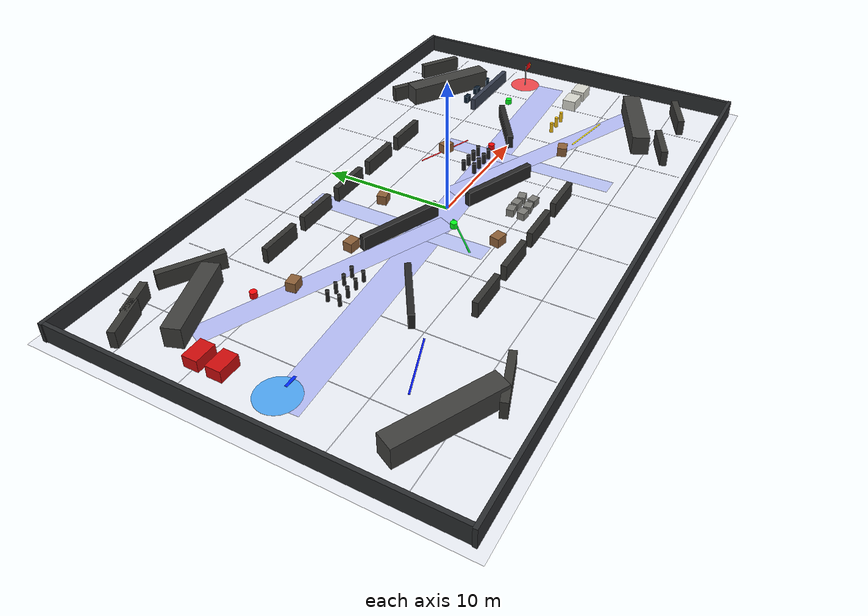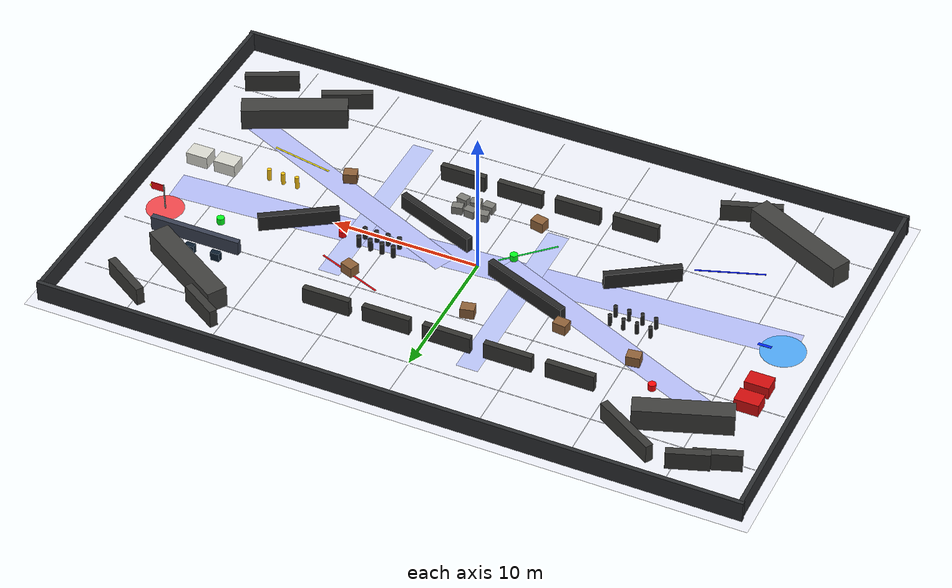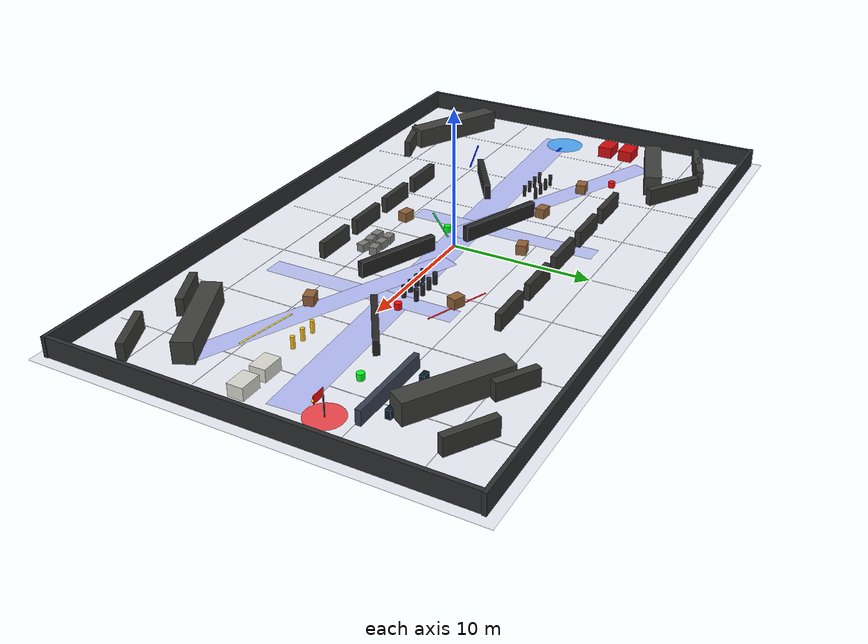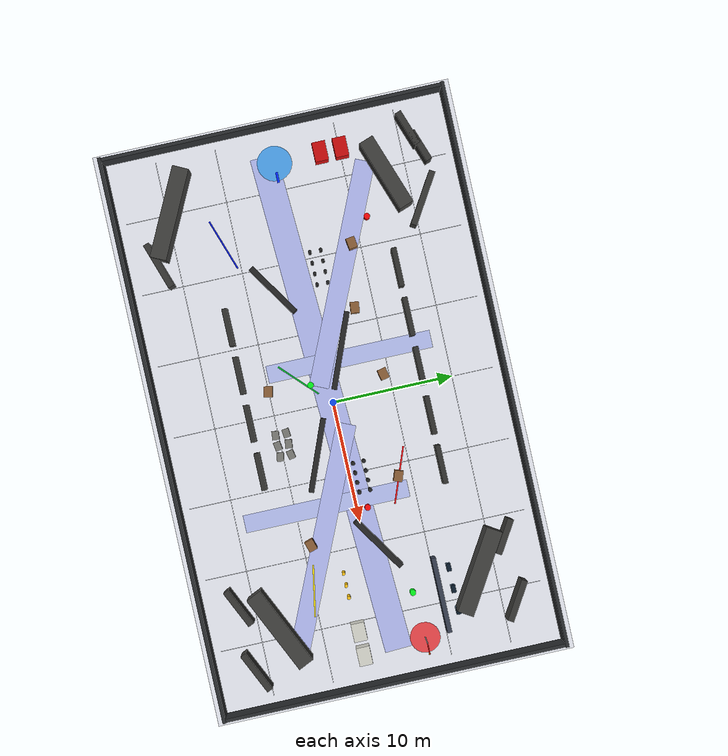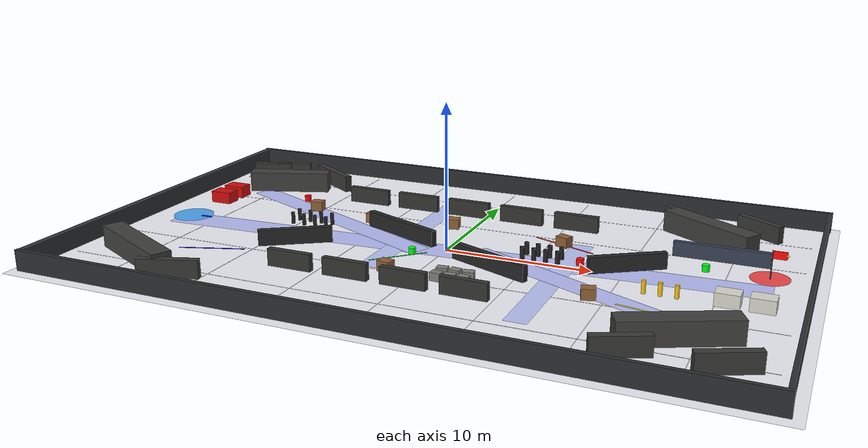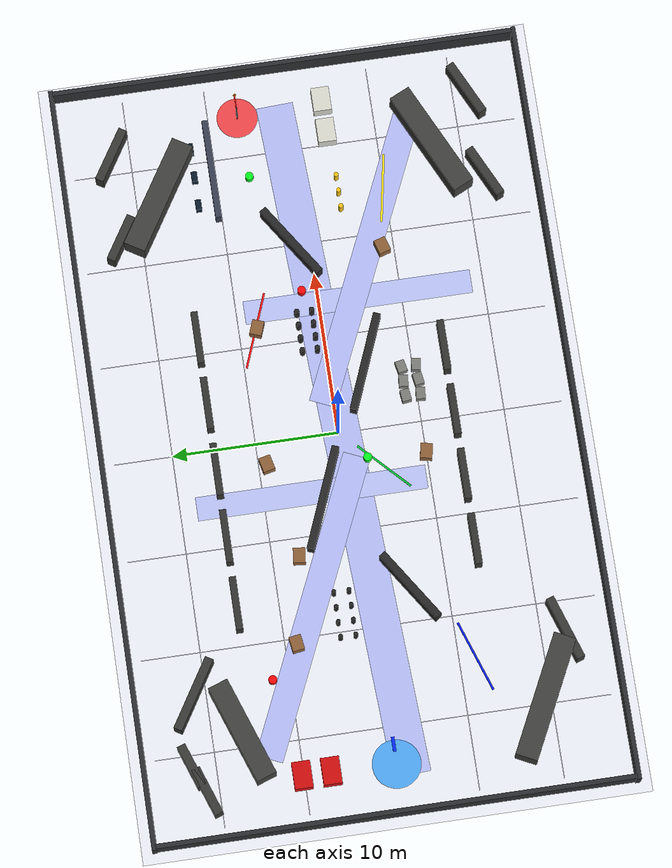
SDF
<?xml version="1.0" ?>
<sdf version="1.6">
  <world name="rvt_cluttered_world">
    <plugin filename="gz-sim-physics-system" name="gz::sim::systems::Physics"/>
    <plugin filename="gz-sim-user-commands-system" name="gz::sim::systems::UserCommands"/>
    <plugin filename="gz-sim-scene-broadcaster-system" name="gz::sim::systems::SceneBroadcaster"/>
    <plugin filename="gz-sim-sensors-system" name="gz::sim::systems::Sensors">
      <render_engine>ogre2</render_engine>
    </plugin>
    <plugin filename="gz-sim-imu-system" name="gz::sim::systems::Imu"/>

    <gravity>0 0 -9.8</gravity>
    <scene>
      <ambient>0.82 0.82 0.86 1.0</ambient>
      <background>0.03 0.035 0.04 1.0</background>
      <shadows>false</shadows>
    </scene>
    <gui fullscreen="0">
      <camera name="stage_scale_overview">
        <pose>0 -1.2 31.0 0 1.22 1.5708</pose>
      </camera>
    </gui>

    <light name="sun" type="directional">
      <cast_shadows>false</cast_shadows>
      <pose>0 0 18 0 0 0</pose>
      <diffuse>0.95 0.95 0.95 1</diffuse>
      <specular>0.18 0.18 0.18 1</specular>
      <attenuation>
        <range>1000</range>
        <constant>0.9</constant>
        <linear>0.01</linear>
        <quadratic>0.001</quadratic>
      </attenuation>
      <direction>-0.35 0.20 -0.92</direction>
    </light>
    <light name="central_softbox" type="point">
      <pose>0 0 13 0 0 0</pose>
      <diffuse>0.72 0.78 1.0 1</diffuse>
      <specular>0.10 0.10 0.12 1</specular>
      <attenuation>
        <range>40</range>
        <constant>0.85</constant>
        <linear>0.02</linear>
        <quadratic>0.002</quadratic>
      </attenuation>
    </light>

    <physics type="ode">
      <max_step_size>0.003</max_step_size>
      <real_time_factor>1.0</real_time_factor>
    </physics>

    <model name="stage_floor">
      <static>true</static>
      <link name="link">
        <collision name="collision">
          <geometry>
            <plane>
              <normal>0 0 1</normal>
              <size>48 30</size>
            </plane>
          </geometry>
        </collision>
        <visual name="visual">
          <geometry>
            <plane>
              <normal>0 0 1</normal>
              <size>48 30</size>
            </plane>
          </geometry>
          <material>
            <ambient>0.88 0.90 0.94 1</ambient>
            <diffuse>0.94 0.95 0.98 1</diffuse>
          </material>
        </visual>
      </link>
    </model>

    <model name="floor_grid_and_routes">
      <static>true</static>
      <link name="main_lane"><pose>0 -0.2 0.012 0 0 0.05</pose><visual name="visual"><geometry><box><size>42.0 2.25 0.012</size></box></geometry><transparency>0.46</transparency><material><ambient>0.35 0.42 1.00 0.35</ambient><diffuse>0.35 0.42 1.00 0.35</diffuse></material></visual></link>
      <link name="diag_lane_left"><pose>-10.2 3.0 0.014 0 0 -0.42</pose><visual name="visual"><geometry><box><size>19.0 1.65 0.012</size></box></geometry><transparency>0.55</transparency><material><ambient>0.25 0.32 1.00 0.30</ambient><diffuse>0.25 0.32 1.00 0.30</diffuse></material></visual></link>
      <link name="diag_lane_right"><pose>10.6 -3.2 0.014 0 0 -0.42</pose><visual name="visual"><geometry><box><size>19.0 1.65 0.012</size></box></geometry><transparency>0.55</transparency><material><ambient>0.25 0.32 1.00 0.30</ambient><diffuse>0.25 0.32 1.00 0.30</diffuse></material></visual></link>
      <link name="cross_lane_a"><pose>-3.4 2.1 0.013 0 0 1.5708</pose><visual name="visual"><geometry><box><size>13.8 1.45 0.012</size></box></geometry><transparency>0.58</transparency><material><ambient>0.20 0.32 1.00 0.26</ambient><diffuse>0.20 0.32 1.00 0.26</diffuse></material></visual></link>
      <link name="cross_lane_b"><pose>8.2 -2.4 0.013 0 0 1.5708</pose><visual name="visual"><geometry><box><size>13.8 1.45 0.012</size></box></geometry><transparency>0.58</transparency><material><ambient>0.20 0.32 1.00 0.26</ambient><diffuse>0.20 0.32 1.00 0.26</diffuse></material></visual></link>
      <link name="blue_route_0"><pose>-14.6 -6.0 0.025 0 0 0.33</pose><visual name="visual"><geometry><box><size>4.5 0.12 0.014</size></box></geometry><material><ambient>0.02 0.10 0.95 1</ambient><diffuse>0.02 0.10 0.95 1</diffuse><emissive>0 0.02 0.30 1</emissive></material></visual></link>
      <link name="green_route_0"><pose>-2.4 -2.4 0.025 0 0 0.77</pose><visual name="visual"><geometry><box><size>4.0 0.12 0.014</size></box></geometry><material><ambient>0.00 0.78 0.16 1</ambient><diffuse>0.00 0.82 0.20 1</diffuse><emissive>0 0.16 0.02 1</emissive></material></visual></link>
      <link name="red_route_0"><pose>7.0 4.0 0.025 0 0 -0.36</pose><visual name="visual"><geometry><box><size>4.8 0.12 0.014</size></box></geometry><material><ambient>0.92 0.05 0.07 1</ambient><diffuse>0.96 0.06 0.08 1</diffuse><emissive>0.22 0 0 1</emissive></material></visual></link>
      <link name="yellow_route_0"><pose>14.8 -4.9 0.025 0 0 -0.18</pose><visual name="visual"><geometry><box><size>4.3 0.12 0.014</size></box></geometry><material><ambient>1.00 0.90 0.05 1</ambient><diffuse>1.00 0.92 0.08 1</diffuse><emissive>0.22 0.20 0 1</emissive></material></visual></link>
      <link name="grid_x_0"><pose>-18 0 0.009 0 0 0</pose><visual name="visual"><geometry><box><size>0.035 27.0 0.01</size></box></geometry><transparency>0.72</transparency><material><ambient>0.65 0.68 0.78 0.20</ambient><diffuse>0.65 0.68 0.78 0.20</diffuse></material></visual></link>
      <link name="grid_x_1"><pose>-12 0 0.009 0 0 0</pose><visual name="visual"><geometry><box><size>0.035 27.0 0.01</size></box></geometry><transparency>0.72</transparency><material><ambient>0.65 0.68 0.78 0.20</ambient><diffuse>0.65 0.68 0.78 0.20</diffuse></material></visual></link>
      <link name="grid_x_2"><pose>-6 0 0.009 0 0 0</pose><visual name="visual"><geometry><box><size>0.035 27.0 0.01</size></box></geometry><transparency>0.72</transparency><material><ambient>0.65 0.68 0.78 0.20</ambient><diffuse>0.65 0.68 0.78 0.20</diffuse></material></visual></link>
      <link name="grid_x_3"><pose>0 0 0.009 0 0 0</pose><visual name="visual"><geometry><box><size>0.035 27.0 0.01</size></box></geometry><transparency>0.72</transparency><material><ambient>0.65 0.68 0.78 0.20</ambient><diffuse>0.65 0.68 0.78 0.20</diffuse></material></visual></link>
      <link name="grid_x_4"><pose>6 0 0.009 0 0 0</pose><visual name="visual"><geometry><box><size>0.035 27.0 0.01</size></box></geometry><transparency>0.72</transparency><material><ambient>0.65 0.68 0.78 0.20</ambient><diffuse>0.65 0.68 0.78 0.20</diffuse></material></visual></link>
      <link name="grid_x_5"><pose>12 0 0.009 0 0 0</pose><visual name="visual"><geometry><box><size>0.035 27.0 0.01</size></box></geometry><transparency>0.72</transparency><material><ambient>0.65 0.68 0.78 0.20</ambient><diffuse>0.65 0.68 0.78 0.20</diffuse></material></visual></link>
      <link name="grid_x_6"><pose>18 0 0.009 0 0 0</pose><visual name="visual"><geometry><box><size>0.035 27.0 0.01</size></box></geometry><transparency>0.72</transparency><material><ambient>0.65 0.68 0.78 0.20</ambient><diffuse>0.65 0.68 0.78 0.20</diffuse></material></visual></link>
      <link name="grid_y_0"><pose>0 -10 0.009 0 0 0</pose><visual name="visual"><geometry><box><size>45.0 0.035 0.01</size></box></geometry><transparency>0.72</transparency><material><ambient>0.65 0.68 0.78 0.20</ambient><diffuse>0.65 0.68 0.78 0.20</diffuse></material></visual></link>
      <link name="grid_y_1"><pose>0 -5 0.009 0 0 0</pose><visual name="visual"><geometry><box><size>45.0 0.035 0.01</size></box></geometry><transparency>0.72</transparency><material><ambient>0.65 0.68 0.78 0.20</ambient><diffuse>0.65 0.68 0.78 0.20</diffuse></material></visual></link>
      <link name="grid_y_2"><pose>0 5 0.009 0 0 0</pose><visual name="visual"><geometry><box><size>45.0 0.035 0.01</size></box></geometry><transparency>0.72</transparency><material><ambient>0.65 0.68 0.78 0.20</ambient><diffuse>0.65 0.68 0.78 0.20</diffuse></material></visual></link>
      <link name="grid_y_3"><pose>0 10 0.009 0 0 0</pose><visual name="visual"><geometry><box><size>45.0 0.035 0.01</size></box></geometry><transparency>0.72</transparency><material><ambient>0.65 0.68 0.78 0.20</ambient><diffuse>0.65 0.68 0.78 0.20</diffuse></material></visual></link>
    </model>

    <model name="stage_scale_walls">
      <static>true</static>
      <link name="north_wall"><pose>0 14.2 0.70 0 0 0</pose><collision name="collision"><geometry><box><size>46.8 0.28 1.40</size></box></geometry></collision><visual name="visual"><geometry><box><size>46.8 0.28 1.40</size></box></geometry><material><ambient>0.10 0.11 0.12 1</ambient><diffuse>0.17 0.18 0.19 1</diffuse></material></visual></link>
      <link name="south_wall"><pose>0 -14.2 0.70 0 0 0</pose><collision name="collision"><geometry><box><size>46.8 0.28 1.40</size></box></geometry></collision><visual name="visual"><geometry><box><size>46.8 0.28 1.40</size></box></geometry><material><ambient>0.10 0.11 0.12 1</ambient><diffuse>0.17 0.18 0.19 1</diffuse></material></visual></link>
      <link name="west_wall"><pose>-23.2 0 0.70 0 0 0</pose><collision name="collision"><geometry><box><size>0.28 28.2 1.40</size></box></geometry></collision><visual name="visual"><geometry><box><size>0.28 28.2 1.40</size></box></geometry><material><ambient>0.10 0.11 0.12 1</ambient><diffuse>0.17 0.18 0.19 1</diffuse></material></visual></link>
      <link name="east_wall"><pose>23.2 0 0.70 0 0 0</pose><collision name="collision"><geometry><box><size>0.28 28.2 1.40</size></box></geometry></collision><visual name="visual"><geometry><box><size>0.28 28.2 1.40</size></box></geometry><material><ambient>0.10 0.11 0.12 1</ambient><diffuse>0.17 0.18 0.19 1</diffuse></material></visual></link>
    </model>

    <model name="warehouse_obstacle_field">
      <static>true</static>
      <link name="nw_building_core"><pose>-17.2 8.2 0.75 0 0 0.34</pose><collision name="collision"><geometry><box><size>6.2 1.25 1.50</size></box></geometry></collision><visual name="visual"><geometry><box><size>6.2 1.25 1.50</size></box></geometry><material><ambient>0.18 0.18 0.17 1</ambient><diffuse>0.25 0.25 0.24 1</diffuse></material></visual></link>
      <link name="nw_building_finger_a"><pose>-20.4 10.7 0.62 0 0 0.34</pose><collision name="collision"><geometry><box><size>3.0 0.52 1.24</size></box></geometry></collision><visual name="visual"><geometry><box><size>3.0 0.52 1.24</size></box></geometry><material><ambient>0.14 0.14 0.14 1</ambient><diffuse>0.22 0.22 0.21 1</diffuse></material></visual></link>
      <link name="nw_building_finger_b"><pose>-18.8 11.4 0.62 0 0 0.34</pose><collision name="collision"><geometry><box><size>2.7 0.52 1.24</size></box></geometry></collision><visual name="visual"><geometry><box><size>2.7 0.52 1.24</size></box></geometry><material><ambient>0.14 0.14 0.14 1</ambient><diffuse>0.22 0.22 0.21 1</diffuse></material></visual></link>
      <link name="nw_building_tail"><pose>-14.6 10.7 0.62 0 0 -0.55</pose><collision name="collision"><geometry><box><size>4.6 0.52 1.24</size></box></geometry></collision><visual name="visual"><geometry><box><size>4.6 0.52 1.24</size></box></geometry><material><ambient>0.14 0.14 0.14 1</ambient><diffuse>0.22 0.22 0.21 1</diffuse></material></visual></link>
      <link name="ne_building_core"><pose>15.9 8.6 0.75 0 0 -0.55</pose><collision name="collision"><geometry><box><size>7.2 1.35 1.50</size></box></geometry></collision><visual name="visual"><geometry><box><size>7.2 1.35 1.50</size></box></geometry><material><ambient>0.18 0.18 0.17 1</ambient><diffuse>0.25 0.25 0.24 1</diffuse></material></visual></link>
      <link name="ne_building_finger_a"><pose>18.9 11.1 0.62 0 0 -0.55</pose><collision name="collision"><geometry><box><size>3.5 0.52 1.24</size></box></geometry></collision><visual name="visual"><geometry><box><size>3.5 0.52 1.24</size></box></geometry><material><ambient>0.14 0.14 0.14 1</ambient><diffuse>0.22 0.22 0.21 1</diffuse></material></visual></link>
      <link name="ne_building_finger_b"><pose>13.6 11.2 0.62 0 0 -0.55</pose><collision name="collision"><geometry><box><size>3.0 0.52 1.24</size></box></geometry></collision><visual name="visual"><geometry><box><size>3.0 0.52 1.24</size></box></geometry><material><ambient>0.14 0.14 0.14 1</ambient><diffuse>0.22 0.22 0.21 1</diffuse></material></visual></link>
      <link name="sw_building_core"><pose>-17.8 -9.6 0.75 0 0 -0.46</pose><collision name="collision"><geometry><box><size>7.6 1.35 1.50</size></box></geometry></collision><visual name="visual"><geometry><box><size>7.6 1.35 1.50</size></box></geometry><material><ambient>0.18 0.18 0.17 1</ambient><diffuse>0.25 0.25 0.24 1</diffuse></material></visual></link>
      <link name="sw_building_tail"><pose>-13.9 -11.4 0.62 0 0 0.32</pose><collision name="collision"><geometry><box><size>4.0 0.50 1.24</size></box></geometry></collision><visual name="visual"><geometry><box><size>4.0 0.50 1.24</size></box></geometry><material><ambient>0.14 0.14 0.14 1</ambient><diffuse>0.22 0.22 0.21 1</diffuse></material></visual></link>
      <link name="se_building_core"><pose>17.0 -8.2 0.75 0 0 0.44</pose><collision name="collision"><geometry><box><size>7.0 1.35 1.50</size></box></geometry></collision><visual name="visual"><geometry><box><size>7.0 1.35 1.50</size></box></geometry><material><ambient>0.18 0.18 0.17 1</ambient><diffuse>0.25 0.25 0.24 1</diffuse></material></visual></link>
      <link name="se_building_finger_a"><pose>20.0 -10.8 0.62 0 0 0.44</pose><collision name="collision"><geometry><box><size>3.6 0.52 1.24</size></box></geometry></collision><visual name="visual"><geometry><box><size>3.6 0.52 1.24</size></box></geometry><material><ambient>0.14 0.14 0.14 1</ambient><diffuse>0.22 0.22 0.21 1</diffuse></material></visual></link>
      <link name="se_building_finger_b"><pose>14.6 -11.1 0.62 0 0 0.44</pose><collision name="collision"><geometry><box><size>3.4 0.52 1.24</size></box></geometry></collision><visual name="visual"><geometry><box><size>3.4 0.52 1.24</size></box></geometry><material><ambient>0.14 0.14 0.14 1</ambient><diffuse>0.22 0.22 0.21 1</diffuse></material></visual></link>

      <link name="central_barrier_a"><pose>-4.0 1.5 0.55 0 0 -0.38</pose><collision name="collision"><geometry><box><size>6.4 0.45 1.10</size></box></geometry></collision><visual name="visual"><geometry><box><size>6.4 0.45 1.10</size></box></geometry><material><ambient>0.09 0.09 0.09 1</ambient><diffuse>0.15 0.15 0.15 1</diffuse></material></visual></link>
      <link name="central_barrier_b"><pose>3.9 -2.2 0.55 0 0 -0.38</pose><collision name="collision"><geometry><box><size>6.1 0.45 1.10</size></box></geometry></collision><visual name="visual"><geometry><box><size>6.1 0.45 1.10</size></box></geometry><material><ambient>0.09 0.09 0.09 1</ambient><diffuse>0.15 0.15 0.15 1</diffuse></material></visual></link>
      <link name="central_barrier_c"><pose>12.0 1.1 0.55 0 0 0.58</pose><collision name="collision"><geometry><box><size>5.2 0.45 1.10</size></box></geometry></collision><visual name="visual"><geometry><box><size>5.2 0.45 1.10</size></box></geometry><material><ambient>0.09 0.09 0.09 1</ambient><diffuse>0.15 0.15 0.15 1</diffuse></material></visual></link>
      <link name="central_barrier_d"><pose>-10.0 -2.8 0.55 0 0 0.58</pose><collision name="collision"><geometry><box><size>5.0 0.45 1.10</size></box></geometry></collision><visual name="visual"><geometry><box><size>5.0 0.45 1.10</size></box></geometry><material><ambient>0.09 0.09 0.09 1</ambient><diffuse>0.15 0.15 0.15 1</diffuse></material></visual></link>

      <link name="rack_north_0"><pose>-9.6 7.5 0.58 0 0 0</pose><collision name="collision"><geometry><box><size>3.2 0.42 1.16</size></box></geometry></collision><visual name="visual"><geometry><box><size>3.2 0.42 1.16</size></box></geometry><material><ambient>0.12 0.12 0.12 1</ambient><diffuse>0.20 0.20 0.19 1</diffuse></material></visual></link>
      <link name="rack_north_1"><pose>-5.5 7.5 0.58 0 0 0</pose><collision name="collision"><geometry><box><size>3.2 0.42 1.16</size></box></geometry></collision><visual name="visual"><geometry><box><size>3.2 0.42 1.16</size></box></geometry><material><ambient>0.12 0.12 0.12 1</ambient><diffuse>0.20 0.20 0.19 1</diffuse></material></visual></link>
      <link name="rack_north_2"><pose>-1.4 7.5 0.58 0 0 0</pose><collision name="collision"><geometry><box><size>3.2 0.42 1.16</size></box></geometry></collision><visual name="visual"><geometry><box><size>3.2 0.42 1.16</size></box></geometry><material><ambient>0.12 0.12 0.12 1</ambient><diffuse>0.20 0.20 0.19 1</diffuse></material></visual></link>
      <link name="rack_north_3"><pose>2.7 7.5 0.58 0 0 0</pose><collision name="collision"><geometry><box><size>3.2 0.42 1.16</size></box></geometry></collision><visual name="visual"><geometry><box><size>3.2 0.42 1.16</size></box></geometry><material><ambient>0.12 0.12 0.12 1</ambient><diffuse>0.20 0.20 0.19 1</diffuse></material></visual></link>
      <link name="rack_north_4"><pose>6.8 7.5 0.58 0 0 0</pose><collision name="collision"><geometry><box><size>3.2 0.42 1.16</size></box></geometry></collision><visual name="visual"><geometry><box><size>3.2 0.42 1.16</size></box></geometry><material><ambient>0.12 0.12 0.12 1</ambient><diffuse>0.20 0.20 0.19 1</diffuse></material></visual></link>
      <link name="rack_south_0"><pose>-7.8 -7.0 0.58 0 0 0</pose><collision name="collision"><geometry><box><size>3.1 0.42 1.16</size></box></geometry></collision><visual name="visual"><geometry><box><size>3.1 0.42 1.16</size></box></geometry><material><ambient>0.12 0.12 0.12 1</ambient><diffuse>0.20 0.20 0.19 1</diffuse></material></visual></link>
      <link name="rack_south_1"><pose>-3.8 -7.0 0.58 0 0 0</pose><collision name="collision"><geometry><box><size>3.1 0.42 1.16</size></box></geometry></collision><visual name="visual"><geometry><box><size>3.1 0.42 1.16</size></box></geometry><material><ambient>0.12 0.12 0.12 1</ambient><diffuse>0.20 0.20 0.19 1</diffuse></material></visual></link>
      <link name="rack_south_2"><pose>0.2 -7.0 0.58 0 0 0</pose><collision name="collision"><geometry><box><size>3.1 0.42 1.16</size></box></geometry></collision><visual name="visual"><geometry><box><size>3.1 0.42 1.16</size></box></geometry><material><ambient>0.12 0.12 0.12 1</ambient><diffuse>0.20 0.20 0.19 1</diffuse></material></visual></link>
      <link name="rack_south_3"><pose>4.2 -7.0 0.58 0 0 0</pose><collision name="collision"><geometry><box><size>3.1 0.42 1.16</size></box></geometry></collision><visual name="visual"><geometry><box><size>3.1 0.42 1.16</size></box></geometry><material><ambient>0.12 0.12 0.12 1</ambient><diffuse>0.20 0.20 0.19 1</diffuse></material></visual></link>

      <link name="loading_station_a"><pose>18.7 -2.0 0.43 0 0 0</pose><collision name="collision"><geometry><box><size>1.5 1.1 0.86</size></box></geometry></collision><visual name="visual"><geometry><box><size>1.5 1.1 0.86</size></box></geometry><material><ambient>0.65 0.65 0.62 1</ambient><diffuse>0.86 0.86 0.82 1</diffuse></material></visual></link>
      <link name="loading_station_b"><pose>20.7 -2.0 0.43 0 0 0</pose><collision name="collision"><geometry><box><size>1.5 1.1 0.86</size></box></geometry></collision><visual name="visual"><geometry><box><size>1.5 1.1 0.86</size></box></geometry><material><ambient>0.65 0.65 0.62 1</ambient><diffuse>0.86 0.86 0.82 1</diffuse></material></visual></link>
      <link name="unloading_station_a"><pose>-20.2 3.4 0.43 0 0 0</pose><collision name="collision"><geometry><box><size>1.6 1.1 0.86</size></box></geometry></collision><visual name="visual"><geometry><box><size>1.6 1.1 0.86</size></box></geometry><material><ambient>0.55 0.03 0.03 1</ambient><diffuse>0.82 0.05 0.05 1</diffuse></material></visual></link>
      <link name="unloading_station_b"><pose>-20.2 5.1 0.43 0 0 0</pose><collision name="collision"><geometry><box><size>1.6 1.1 0.86</size></box></geometry></collision><visual name="visual"><geometry><box><size>1.6 1.1 0.86</size></box></geometry><material><ambient>0.55 0.03 0.03 1</ambient><diffuse>0.82 0.05 0.05 1</diffuse></material></visual></link>
      <link name="charging_barrier"><pose>17.2 5.2 0.50 0 0 0</pose><collision name="collision"><geometry><box><size>6.2 0.38 1.00</size></box></geometry></collision><visual name="visual"><geometry><box><size>6.2 0.38 1.00</size></box></geometry><material><ambient>0.14 0.16 0.20 1</ambient><diffuse>0.22 0.25 0.32 1</diffuse></material></visual></link>
      <link name="charger_box_0"><pose>15.2 6.3 0.30 0 0 0</pose><collision name="collision"><geometry><box><size>0.62 0.36 0.60</size></box></geometry></collision><visual name="visual"><geometry><box><size>0.62 0.36 0.60</size></box></geometry><material><ambient>0.02 0.05 0.08 1</ambient><diffuse>0.04 0.11 0.18 1</diffuse><emissive>0 0.08 0.18 1</emissive></material></visual></link>
      <link name="charger_box_1"><pose>17.0 6.3 0.30 0 0 0</pose><collision name="collision"><geometry><box><size>0.62 0.36 0.60</size></box></geometry></collision><visual name="visual"><geometry><box><size>0.62 0.36 0.60</size></box></geometry><material><ambient>0.02 0.05 0.08 1</ambient><diffuse>0.04 0.11 0.18 1</diffuse><emissive>0 0.08 0.18 1</emissive></material></visual></link>
      <link name="charger_box_2"><pose>18.8 6.3 0.30 0 0 0</pose><collision name="collision"><geometry><box><size>0.62 0.36 0.60</size></box></geometry></collision><visual name="visual"><geometry><box><size>0.62 0.36 0.60</size></box></geometry><material><ambient>0.02 0.05 0.08 1</ambient><diffuse>0.04 0.11 0.18 1</diffuse><emissive>0 0.08 0.18 1</emissive></material></visual></link>

      <link name="crate_0"><pose>-12.4 4.3 0.36 0 0 0.15</pose><collision name="collision"><geometry><box><size>0.9 0.72 0.72</size></box></geometry></collision><visual name="visual"><geometry><box><size>0.9 0.72 0.72</size></box></geometry><material><ambient>0.36 0.25 0.15 1</ambient><diffuse>0.56 0.38 0.22 1</diffuse></material></visual></link>
      <link name="crate_1"><pose>-7.2 3.4 0.36 0 0 -0.1</pose><collision name="collision"><geometry><box><size>0.9 0.72 0.72</size></box></geometry></collision><visual name="visual"><geometry><box><size>0.9 0.72 0.72</size></box></geometry><material><ambient>0.36 0.25 0.15 1</ambient><diffuse>0.56 0.38 0.22 1</diffuse></material></visual></link>
      <link name="crate_2"><pose>-1.4 4.5 0.36 0 0 0.22</pose><collision name="collision"><geometry><box><size>0.9 0.72 0.72</size></box></geometry></collision><visual name="visual"><geometry><box><size>0.9 0.72 0.72</size></box></geometry><material><ambient>0.36 0.25 0.15 1</ambient><diffuse>0.56 0.38 0.22 1</diffuse></material></visual></link>
      <link name="crate_3"><pose>7.0 3.9 0.36 0 0 -0.35</pose><collision name="collision"><geometry><box><size>0.9 0.72 0.72</size></box></geometry></collision><visual name="visual"><geometry><box><size>0.9 0.72 0.72</size></box></geometry><material><ambient>0.36 0.25 0.15 1</ambient><diffuse>0.56 0.38 0.22 1</diffuse></material></visual></link>
      <link name="crate_4"><pose>11.0 -4.3 0.36 0 0 0.3</pose><collision name="collision"><geometry><box><size>0.9 0.72 0.72</size></box></geometry></collision><visual name="visual"><geometry><box><size>0.9 0.72 0.72</size></box></geometry><material><ambient>0.36 0.25 0.15 1</ambient><diffuse>0.56 0.38 0.22 1</diffuse></material></visual></link>
      <link name="crate_5"><pose>-2.0 -5.0 0.36 0 0 -0.2</pose><collision name="collision"><geometry><box><size>0.9 0.72 0.72</size></box></geometry></collision><visual name="visual"><geometry><box><size>0.9 0.72 0.72</size></box></geometry><material><ambient>0.36 0.25 0.15 1</ambient><diffuse>0.56 0.38 0.22 1</diffuse></material></visual></link>
    </model>

    <model name="dense_post_and_pallet_fields">
      <static>true</static>
      <link name="post_a_0"><pose>-12.4 0.8 0.42 0 0 0</pose><collision name="collision"><geometry><cylinder><radius>0.13</radius><length>0.84</length></cylinder></geometry></collision><visual name="visual"><geometry><cylinder><radius>0.13</radius><length>0.84</length></cylinder></geometry><material><ambient>0.08 0.08 0.08 1</ambient><diffuse>0.14 0.14 0.14 1</diffuse></material></visual></link>
      <link name="post_a_1"><pose>-11.5 0.8 0.42 0 0 0</pose><collision name="collision"><geometry><cylinder><radius>0.13</radius><length>0.84</length></cylinder></geometry></collision><visual name="visual"><geometry><cylinder><radius>0.13</radius><length>0.84</length></cylinder></geometry><material><ambient>0.08 0.08 0.08 1</ambient><diffuse>0.14 0.14 0.14 1</diffuse></material></visual></link>
      <link name="post_a_2"><pose>-10.6 0.8 0.42 0 0 0</pose><collision name="collision"><geometry><cylinder><radius>0.13</radius><length>0.84</length></cylinder></geometry></collision><visual name="visual"><geometry><cylinder><radius>0.13</radius><length>0.84</length></cylinder></geometry><material><ambient>0.08 0.08 0.08 1</ambient><diffuse>0.14 0.14 0.14 1</diffuse></material></visual></link>
      <link name="post_a_3"><pose>-9.7 0.8 0.42 0 0 0</pose><collision name="collision"><geometry><cylinder><radius>0.13</radius><length>0.84</length></cylinder></geometry></collision><visual name="visual"><geometry><cylinder><radius>0.13</radius><length>0.84</length></cylinder></geometry><material><ambient>0.08 0.08 0.08 1</ambient><diffuse>0.14 0.14 0.14 1</diffuse></material></visual></link>
      <link name="post_a_4"><pose>-12.4 1.7 0.42 0 0 0</pose><collision name="collision"><geometry><cylinder><radius>0.13</radius><length>0.84</length></cylinder></geometry></collision><visual name="visual"><geometry><cylinder><radius>0.13</radius><length>0.84</length></cylinder></geometry><material><ambient>0.08 0.08 0.08 1</ambient><diffuse>0.14 0.14 0.14 1</diffuse></material></visual></link>
      <link name="post_a_5"><pose>-11.5 1.7 0.42 0 0 0</pose><collision name="collision"><geometry><cylinder><radius>0.13</radius><length>0.84</length></cylinder></geometry></collision><visual name="visual"><geometry><cylinder><radius>0.13</radius><length>0.84</length></cylinder></geometry><material><ambient>0.08 0.08 0.08 1</ambient><diffuse>0.14 0.14 0.14 1</diffuse></material></visual></link>
      <link name="post_a_6"><pose>-10.6 1.7 0.42 0 0 0</pose><collision name="collision"><geometry><cylinder><radius>0.13</radius><length>0.84</length></cylinder></geometry></collision><visual name="visual"><geometry><cylinder><radius>0.13</radius><length>0.84</length></cylinder></geometry><material><ambient>0.08 0.08 0.08 1</ambient><diffuse>0.14 0.14 0.14 1</diffuse></material></visual></link>
      <link name="post_a_7"><pose>-9.7 1.7 0.42 0 0 0</pose><collision name="collision"><geometry><cylinder><radius>0.13</radius><length>0.84</length></cylinder></geometry></collision><visual name="visual"><geometry><cylinder><radius>0.13</radius><length>0.84</length></cylinder></geometry><material><ambient>0.08 0.08 0.08 1</ambient><diffuse>0.14 0.14 0.14 1</diffuse></material></visual></link>
      <link name="post_b_0"><pose>5.2 0.5 0.42 0 0 0</pose><collision name="collision"><geometry><cylinder><radius>0.16</radius><length>0.84</length></cylinder></geometry></collision><visual name="visual"><geometry><cylinder><radius>0.16</radius><length>0.84</length></cylinder></geometry><material><ambient>0.08 0.08 0.08 1</ambient><diffuse>0.14 0.14 0.14 1</diffuse></material></visual></link>
      <link name="post_b_1"><pose>6.0 0.5 0.42 0 0 0</pose><collision name="collision"><geometry><cylinder><radius>0.16</radius><length>0.84</length></cylinder></geometry></collision><visual name="visual"><geometry><cylinder><radius>0.16</radius><length>0.84</length></cylinder></geometry><material><ambient>0.08 0.08 0.08 1</ambient><diffuse>0.14 0.14 0.14 1</diffuse></material></visual></link>
      <link name="post_b_2"><pose>6.8 0.5 0.42 0 0 0</pose><collision name="collision"><geometry><cylinder><radius>0.16</radius><length>0.84</length></cylinder></geometry></collision><visual name="visual"><geometry><cylinder><radius>0.16</radius><length>0.84</length></cylinder></geometry><material><ambient>0.08 0.08 0.08 1</ambient><diffuse>0.14 0.14 0.14 1</diffuse></material></visual></link>
      <link name="post_b_3"><pose>7.6 0.5 0.42 0 0 0</pose><collision name="collision"><geometry><cylinder><radius>0.16</radius><length>0.84</length></cylinder></geometry></collision><visual name="visual"><geometry><cylinder><radius>0.16</radius><length>0.84</length></cylinder></geometry><material><ambient>0.08 0.08 0.08 1</ambient><diffuse>0.14 0.14 0.14 1</diffuse></material></visual></link>
      <link name="post_b_4"><pose>5.2 1.4 0.42 0 0 0</pose><collision name="collision"><geometry><cylinder><radius>0.16</radius><length>0.84</length></cylinder></geometry></collision><visual name="visual"><geometry><cylinder><radius>0.16</radius><length>0.84</length></cylinder></geometry><material><ambient>0.08 0.08 0.08 1</ambient><diffuse>0.14 0.14 0.14 1</diffuse></material></visual></link>
      <link name="post_b_5"><pose>6.0 1.4 0.42 0 0 0</pose><collision name="collision"><geometry><cylinder><radius>0.16</radius><length>0.84</length></cylinder></geometry></collision><visual name="visual"><geometry><cylinder><radius>0.16</radius><length>0.84</length></cylinder></geometry><material><ambient>0.08 0.08 0.08 1</ambient><diffuse>0.14 0.14 0.14 1</diffuse></material></visual></link>
      <link name="post_b_6"><pose>6.8 1.4 0.42 0 0 0</pose><collision name="collision"><geometry><cylinder><radius>0.16</radius><length>0.84</length></cylinder></geometry></collision><visual name="visual"><geometry><cylinder><radius>0.16</radius><length>0.84</length></cylinder></geometry><material><ambient>0.08 0.08 0.08 1</ambient><diffuse>0.14 0.14 0.14 1</diffuse></material></visual></link>
      <link name="post_b_7"><pose>7.6 1.4 0.42 0 0 0</pose><collision name="collision"><geometry><cylinder><radius>0.16</radius><length>0.84</length></cylinder></geometry></collision><visual name="visual"><geometry><cylinder><radius>0.16</radius><length>0.84</length></cylinder></geometry><material><ambient>0.08 0.08 0.08 1</ambient><diffuse>0.14 0.14 0.14 1</diffuse></material></visual></link>
      <link name="pallet_cluster_0"><pose>1.6 -4.3 0.28 0 0 0.12</pose><collision name="collision"><geometry><box><size>0.72 0.56 0.56</size></box></geometry></collision><visual name="visual"><geometry><box><size>0.72 0.56 0.56</size></box></geometry><material><ambient>0.35 0.35 0.34 1</ambient><diffuse>0.49 0.49 0.47 1</diffuse></material></visual></link>
      <link name="pallet_cluster_1"><pose>2.5 -4.3 0.28 0 0 -0.1</pose><collision name="collision"><geometry><box><size>0.72 0.56 0.56</size></box></geometry></collision><visual name="visual"><geometry><box><size>0.72 0.56 0.56</size></box></geometry><material><ambient>0.35 0.35 0.34 1</ambient><diffuse>0.49 0.49 0.47 1</diffuse></material></visual></link>
      <link name="pallet_cluster_2"><pose>3.4 -4.3 0.28 0 0 0.2</pose><collision name="collision"><geometry><box><size>0.72 0.56 0.56</size></box></geometry></collision><visual name="visual"><geometry><box><size>0.72 0.56 0.56</size></box></geometry><material><ambient>0.35 0.35 0.34 1</ambient><diffuse>0.49 0.49 0.47 1</diffuse></material></visual></link>
      <link name="pallet_cluster_3"><pose>1.6 -5.2 0.28 0 0 -0.08</pose><collision name="collision"><geometry><box><size>0.72 0.56 0.56</size></box></geometry></collision><visual name="visual"><geometry><box><size>0.72 0.56 0.56</size></box></geometry><material><ambient>0.35 0.35 0.34 1</ambient><diffuse>0.49 0.49 0.47 1</diffuse></material></visual></link>
      <link name="pallet_cluster_4"><pose>2.5 -5.2 0.28 0 0 0.16</pose><collision name="collision"><geometry><box><size>0.72 0.56 0.56</size></box></geometry></collision><visual name="visual"><geometry><box><size>0.72 0.56 0.56</size></box></geometry><material><ambient>0.35 0.35 0.34 1</ambient><diffuse>0.49 0.49 0.47 1</diffuse></material></visual></link>
      <link name="pallet_cluster_5"><pose>3.4 -5.2 0.28 0 0 -0.15</pose><collision name="collision"><geometry><box><size>0.72 0.56 0.56</size></box></geometry></collision><visual name="visual"><geometry><box><size>0.72 0.56 0.56</size></box></geometry><material><ambient>0.35 0.35 0.34 1</ambient><diffuse>0.49 0.49 0.47 1</diffuse></material></visual></link>
      <link name="safety_bollard_0"><pose>13.8 -2.2 0.42 0 0 0</pose><collision name="collision"><geometry><cylinder><radius>0.14</radius><length>0.84</length></cylinder></geometry></collision><visual name="visual"><geometry><cylinder><radius>0.14</radius><length>0.84</length></cylinder></geometry><material><ambient>1.00 0.68 0.04 1</ambient><diffuse>1.00 0.78 0.08 1</diffuse></material></visual></link>
      <link name="safety_bollard_1"><pose>14.8 -2.2 0.42 0 0 0</pose><collision name="collision"><geometry><cylinder><radius>0.14</radius><length>0.84</length></cylinder></geometry></collision><visual name="visual"><geometry><cylinder><radius>0.14</radius><length>0.84</length></cylinder></geometry><material><ambient>1.00 0.68 0.04 1</ambient><diffuse>1.00 0.78 0.08 1</diffuse></material></visual></link>
      <link name="safety_bollard_2"><pose>15.8 -2.2 0.42 0 0 0</pose><collision name="collision"><geometry><cylinder><radius>0.14</radius><length>0.84</length></cylinder></geometry></collision><visual name="visual"><geometry><cylinder><radius>0.14</radius><length>0.84</length></cylinder></geometry><material><ambient>1.00 0.68 0.04 1</ambient><diffuse>1.00 0.78 0.08 1</diffuse></material></visual></link>
      <link name="red_goal_marker_0"><pose>-14.3 6.0 0.22 0 0 0</pose><collision name="collision"><geometry><cylinder><radius>0.25</radius><length>0.44</length></cylinder></geometry></collision><visual name="visual"><geometry><cylinder><radius>0.25</radius><length>0.44</length></cylinder></geometry><material><ambient>0.96 0.02 0.03 1</ambient><diffuse>1.00 0.03 0.04 1</diffuse><emissive>0.18 0 0 1</emissive></material></visual></link>
      <link name="red_goal_marker_1"><pose>9.0 0.9 0.22 0 0 0</pose><collision name="collision"><geometry><cylinder><radius>0.25</radius><length>0.44</length></cylinder></geometry></collision><visual name="visual"><geometry><cylinder><radius>0.25</radius><length>0.44</length></cylinder></geometry><material><ambient>0.96 0.02 0.03 1</ambient><diffuse>1.00 0.03 0.04 1</diffuse><emissive>0.18 0 0 1</emissive></material></visual></link>
      <link name="green_pick_marker_0"><pose>-1.8 -1.5 0.22 0 0 0</pose><collision name="collision"><geometry><cylinder><radius>0.25</radius><length>0.44</length></cylinder></geometry></collision><visual name="visual"><geometry><cylinder><radius>0.25</radius><length>0.44</length></cylinder></geometry><material><ambient>0.02 0.92 0.10 1</ambient><diffuse>0.02 1.00 0.12 1</diffuse><emissive>0 0.16 0 1</emissive></material></visual></link>
      <link name="green_pick_marker_1"><pose>16.6 3.0 0.22 0 0 0</pose><collision name="collision"><geometry><cylinder><radius>0.25</radius><length>0.44</length></cylinder></geometry></collision><visual name="visual"><geometry><cylinder><radius>0.25</radius><length>0.44</length></cylinder></geometry><material><ambient>0.02 0.92 0.10 1</ambient><diffuse>0.02 1.00 0.12 1</diffuse><emissive>0 0.16 0 1</emissive></material></visual></link>
    </model>

    <model name="swarm_start_zone">
      <static>true</static>
      <pose>-20.25 -0.45 0 0 0 0</pose>
      <link name="pad">
        <visual name="start_disc">
          <pose>0 0 0.03 0 0 0</pose>
          <geometry><cylinder><radius>1.45</radius><length>0.025</length></cylinder></geometry>
          <transparency>0.25</transparency>
          <material>
            <ambient>0.02 0.45 1.00 0.65</ambient>
            <diffuse>0.02 0.55 1.00 0.65</diffuse>
            <emissive>0.00 0.06 0.18 1</emissive>
          </material>
        </visual>
        <visual name="start_arrow">
          <pose>1.18 0 0.055 0 0 0</pose>
          <geometry><box><size>0.88 0.20 0.025</size></box></geometry>
          <material>
            <ambient>0.00 0.12 0.95 1</ambient>
            <diffuse>0.00 0.16 1.00 1</diffuse>
            <emissive>0.00 0.04 0.22 1</emissive>
          </material>
        </visual>
      </link>
    </model>

    <model name="goal_flag">
      <static>true</static>
      <pose>20.5 3.2 0 0 0 0</pose>
      <link name="goal_marker">
        <visual name="goal_disc">
          <pose>0 0 0.03 0 0 0</pose>
          <geometry><cylinder><radius>1.25</radius><length>0.025</length></cylinder></geometry>
          <transparency>0.22</transparency>
          <material>
            <ambient>1.00 0.03 0.04 0.70</ambient>
            <diffuse>1.00 0.04 0.05 0.70</diffuse>
            <emissive>0.16 0 0 1</emissive>
          </material>
        </visual>
        <collision name="pole_collision">
          <pose>0 0 0.95 0 0 0</pose>
          <geometry><cylinder><radius>0.045</radius><length>1.9</length></cylinder></geometry>
        </collision>
        <visual name="pole">
          <pose>0 0 0.95 0 0 0</pose>
          <geometry><cylinder><radius>0.045</radius><length>1.9</length></cylinder></geometry>
          <material>
            <ambient>0.02 0.02 0.02 1</ambient>
            <diffuse>0.08 0.08 0.08 1</diffuse>
          </material>
        </visual>
        <visual name="flag">
          <pose>0.45 0 1.62 0 0 0</pose>
          <geometry><box><size>0.90 0.055 0.52</size></box></geometry>
          <material>
            <ambient>0.95 0.02 0.03 1</ambient>
            <diffuse>1.00 0.04 0.05 1</diffuse>
            <emissive>0.18 0 0 1</emissive>
          </material>
        </visual>
        <visual name="flag_tip">
          <pose>0.92 0 1.62 0 0 0</pose>
          <geometry><sphere><radius>0.085</radius></sphere></geometry>
          <material>
            <ambient>1.00 0.75 0.05 1</ambient>
            <diffuse>1.00 0.82 0.06 1</diffuse>
            <emissive>0.10 0.07 0 1</emissive>
          </material>
        </visual>
      </link>
    </model>
  </world>
</sdf>
